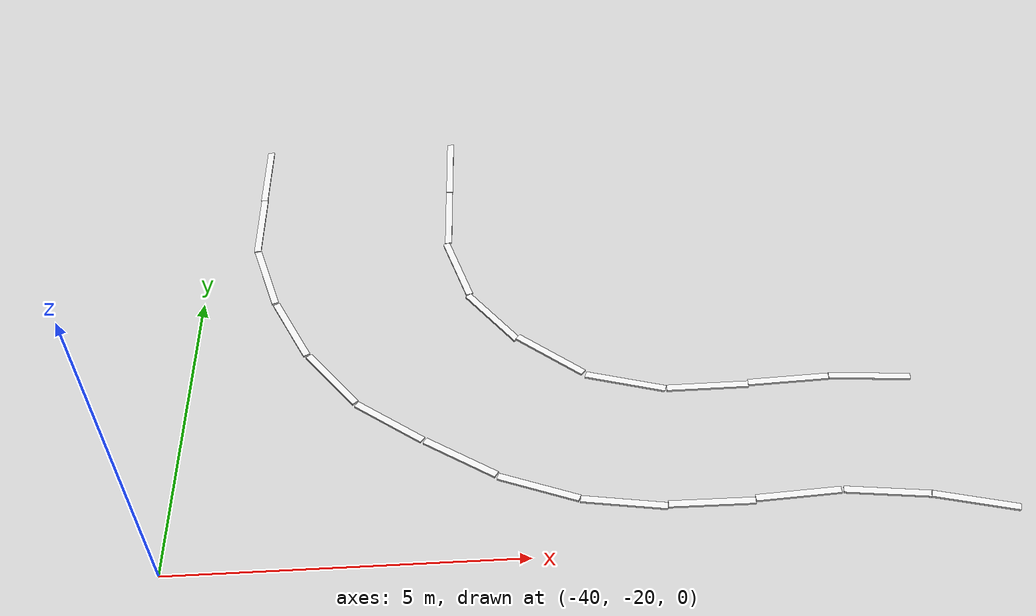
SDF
<sdf version="1.7">
 <world name="default">
  <model name="ground_plane">
   <static>1</static>
   <link name="link">
    <collision name="collision">
     <geometry><plane><normal>0 0 1</normal><size>100 100</size></plane></geometry>
     <surface><friction><ode><mu>100</mu><mu2>50</mu2></ode></friction></surface>
    </collision>
    <visual name="visual">
     <cast_shadows>0</cast_shadows>
     <geometry><plane><normal>0 0 1</normal><size>100 100</size></plane></geometry>
     <material>
      <script><uri>file://media/materials/scripts/gazebo.material</uri><name>Gazebo/Grey</name></script>
     </material>
    </visual>
   </link>
  </model>
  <model name="road_way_0">
   <link name="link">
    <inertial>
     <mass>1</mass>
     <inertia>
      <ixx>0.166667</ixx>
      <ixy>0</ixy>
      <ixz>0</ixz>
      <iyy>0.166667</iyy>
      <iyz>0</iyz>
      <izz>0.166667</izz>
     </inertia>
    </inertial>
    <visual name="visual">
     <geometry><box><size>0.106644 1.22348 0.03129</size></box></geometry>
     <material>
      <script><name>Gazebo/White</name><uri>file://media/materials/scripts/gazebo.material</uri></script>
      <shader type="pixel"><normal_map>__default__</normal_map></shader>
      <ambient>1 1 1 1</ambient>
      <diffuse>1 1 1 1</diffuse>
      <specular>0 0 0 1</specular>
      <emissive>0 0 0 1</emissive>
     </material>
    </visual>
    <collision name="collision">
     <geometry><box><size>0.10644 1.22348 0.03129</size></box></geometry>
     <surface>
      <friction>
       <ode><mu>1</mu><mu2>1</mu2><fdir1>0 0 0</fdir1><slip1>0</slip1><slip2>0</slip2></ode>
       <torsional>
        <coefficient>1</coefficient>
        <patch_radius>0</patch_radius>
        <surface_radius>0</surface_radius>
        <use_patch_radius>1</use_patch_radius>
        <ode><slip>0</slip></ode>
       </torsional>
      </friction>
      <bounce><restitution_coefficient>0</restitution_coefficient><threshold>1e+06</threshold></bounce>
      <contact>
       <collide_without_contact>0</collide_without_contact>
       <collide_without_contact_bitmask>1</collide_without_contact_bitmask>
       <collide_bitmask>1</collide_bitmask>
       <ode>
        <soft_cfm>0</soft_cfm>
        <soft_erp>0.2</soft_erp>
        <kp>1e+13</kp>
        <kd>1</kd>
        <max_vel>0.01</max_vel>
        <min_depth>0</min_depth>
       </ode>
       <bullet>
        <split_impulse>1</split_impulse>
        <split_impulse_penetration_threshold>-0.01</split_impulse_penetration_threshold>
        <soft_cfm>0</soft_cfm>
        <soft_erp>0.2</soft_erp>
        <kp>1e+13</kp>
        <kd>1</kd>
       </bullet>
      </contact>
     </surface>
    </collision>
   </link>
   <static>0</static>
   <pose>-39.2794 -12.0301 0.015638 1.1e-05 -0 -0.005652</pose>
  </model>
  <model name="road_way_0_clone">
   <link name="link">
    <inertial>
     <mass>1</mass>
     <inertia>
      <ixx>0.166667</ixx>
      <ixy>0</ixy>
      <ixz>0</ixz>
      <iyy>0.166667</iyy>
      <iyz>0</iyz>
      <izz>0.166667</izz>
     </inertia>
    </inertial>
    <visual name="visual">
     <geometry><box><size>0.106644 1.22348 0.03129</size></box></geometry>
     <material>
      <script><name>Gazebo/White</name><uri>file://media/materials/scripts/gazebo.material</uri></script>
      <shader type="pixel"><normal_map>__default__</normal_map></shader>
      <ambient>1 1 1 1</ambient>
      <diffuse>1 1 1 1</diffuse>
      <specular>0 0 0 1</specular>
      <emissive>0 0 0 1</emissive>
     </material>
    </visual>
    <collision name="collision">
     <geometry><box><size>0.10644 1.22348 0.03129</size></box></geometry>
     <surface>
      <friction>
       <ode><mu>1</mu><mu2>1</mu2><fdir1>0 0 0</fdir1><slip1>0</slip1><slip2>0</slip2></ode>
       <torsional>
        <coefficient>1</coefficient>
        <patch_radius>0</patch_radius>
        <surface_radius>0</surface_radius>
        <use_patch_radius>1</use_patch_radius>
        <ode><slip>0</slip></ode>
       </torsional>
      </friction>
      <bounce><restitution_coefficient>0</restitution_coefficient><threshold>1e+06</threshold></bounce>
      <contact>
       <collide_without_contact>0</collide_without_contact>
       <collide_without_contact_bitmask>1</collide_without_contact_bitmask>
       <collide_bitmask>1</collide_bitmask>
       <ode>
        <soft_cfm>0</soft_cfm>
        <soft_erp>0.2</soft_erp>
        <kp>1e+13</kp>
        <kd>1</kd>
        <max_vel>0.01</max_vel>
        <min_depth>0</min_depth>
       </ode>
       <bullet>
        <split_impulse>1</split_impulse>
        <split_impulse_penetration_threshold>-0.01</split_impulse_penetration_threshold>
        <soft_cfm>0</soft_cfm>
        <soft_erp>0.2</soft_erp>
        <kp>1e+13</kp>
        <kd>1</kd>
       </bullet>
      </contact>
     </surface>
    </collision>
   </link>
   <static>0</static>
   <pose>-36.1652 -11.9953 0.015638 1.1e-05 -0 -0.006089</pose>
  </model>
  <model name="road_way_0_clone_0">
   <link name="link">
    <inertial>
     <mass>1</mass>
     <inertia>
      <ixx>0.166667</ixx>
      <ixy>0</ixy>
      <ixz>0</ixz>
      <iyy>0.166667</iyy>
      <iyz>0</iyz>
      <izz>0.166667</izz>
     </inertia>
    </inertial>
    <visual name="visual">
     <geometry><box><size>0.106644 1.22348 0.03129</size></box></geometry>
     <material>
      <script><name>Gazebo/White</name><uri>file://media/materials/scripts/gazebo.material</uri></script>
      <shader type="pixel"><normal_map>__default__</normal_map></shader>
      <ambient>1 1 1 1</ambient>
      <diffuse>1 1 1 1</diffuse>
      <specular>0 0 0 1</specular>
      <emissive>0 0 0 1</emissive>
     </material>
    </visual>
    <collision name="collision">
     <geometry><box><size>0.10644 1.22348 0.03129</size></box></geometry>
     <surface>
      <friction>
       <ode><mu>1</mu><mu2>1</mu2><fdir1>0 0 0</fdir1><slip1>0</slip1><slip2>0</slip2></ode>
       <torsional>
        <coefficient>1</coefficient>
        <patch_radius>0</patch_radius>
        <surface_radius>0</surface_radius>
        <use_patch_radius>1</use_patch_radius>
        <ode><slip>0</slip></ode>
       </torsional>
      </friction>
      <bounce><restitution_coefficient>0</restitution_coefficient><threshold>1e+06</threshold></bounce>
      <contact>
       <collide_without_contact>0</collide_without_contact>
       <collide_without_contact_bitmask>1</collide_without_contact_bitmask>
       <collide_bitmask>1</collide_bitmask>
       <ode>
        <soft_cfm>0</soft_cfm>
        <soft_erp>0.2</soft_erp>
        <kp>1e+13</kp>
        <kd>1</kd>
        <max_vel>0.01</max_vel>
        <min_depth>0</min_depth>
       </ode>
       <bullet>
        <split_impulse>1</split_impulse>
        <split_impulse_penetration_threshold>-0.01</split_impulse_penetration_threshold>
        <soft_cfm>0</soft_cfm>
        <soft_erp>0.2</soft_erp>
        <kp>1e+13</kp>
        <kd>1</kd>
       </bullet>
      </contact>
     </surface>
    </collision>
   </link>
   <static>0</static>
   <pose>-39.278 -13.2565 0.015638 -1.1e-05 -0 -0.005746</pose>
  </model>
  <model name="road_way_0_clone_clone">
   <link name="link">
    <inertial>
     <mass>1</mass>
     <inertia>
      <ixx>0.166667</ixx>
      <ixy>0</ixy>
      <ixz>0</ixz>
      <iyy>0.166667</iyy>
      <iyz>0</iyz>
      <izz>0.166667</izz>
     </inertia>
    </inertial>
    <visual name="visual">
     <geometry><box><size>0.106644 1.22348 0.03129</size></box></geometry>
     <material>
      <script><name>Gazebo/White</name><uri>file://media/materials/scripts/gazebo.material</uri></script>
      <shader type="pixel"><normal_map>__default__</normal_map></shader>
      <ambient>1 1 1 1</ambient>
      <diffuse>1 1 1 1</diffuse>
      <specular>0 0 0 1</specular>
      <emissive>0 0 0 1</emissive>
     </material>
    </visual>
    <collision name="collision">
     <geometry><box><size>0.10644 1.22348 0.03129</size></box></geometry>
     <surface>
      <friction>
       <ode><mu>1</mu><mu2>1</mu2><fdir1>0 0 0</fdir1><slip1>0</slip1><slip2>0</slip2></ode>
       <torsional>
        <coefficient>1</coefficient>
        <patch_radius>0</patch_radius>
        <surface_radius>0</surface_radius>
        <use_patch_radius>1</use_patch_radius>
        <ode><slip>0</slip></ode>
       </torsional>
      </friction>
      <bounce><restitution_coefficient>0</restitution_coefficient><threshold>1e+06</threshold></bounce>
      <contact>
       <collide_without_contact>0</collide_without_contact>
       <collide_without_contact_bitmask>1</collide_without_contact_bitmask>
       <collide_bitmask>1</collide_bitmask>
       <ode>
        <soft_cfm>0</soft_cfm>
        <soft_erp>0.2</soft_erp>
        <kp>1e+13</kp>
        <kd>1</kd>
        <max_vel>0.01</max_vel>
        <min_depth>0</min_depth>
       </ode>
       <bullet>
        <split_impulse>1</split_impulse>
        <split_impulse_penetration_threshold>-0.01</split_impulse_penetration_threshold>
        <soft_cfm>0</soft_cfm>
        <soft_erp>0.2</soft_erp>
        <kp>1e+13</kp>
        <kd>1</kd>
       </bullet>
      </contact>
     </surface>
    </collision>
   </link>
   <static>0</static>
   <pose>-36.1754 -13.2348 0.015638 -1.1e-05 0 -0.005688</pose>
  </model>
  <model name="road_way_0_clone_0_clone">
   <link name="link">
    <inertial>
     <mass>1</mass>
     <inertia>
      <ixx>0.166667</ixx>
      <ixy>0</ixy>
      <ixz>0</ixz>
      <iyy>0.166667</iyy>
      <iyz>0</iyz>
      <izz>0.166667</izz>
     </inertia>
    </inertial>
    <visual name="visual">
     <geometry><box><size>0.106644 1.22348 0.03129</size></box></geometry>
     <material>
      <script><name>Gazebo/White</name><uri>file://media/materials/scripts/gazebo.material</uri></script>
      <shader type="pixel"><normal_map>__default__</normal_map></shader>
      <ambient>1 1 1 1</ambient>
      <diffuse>1 1 1 1</diffuse>
      <specular>0 0 0 1</specular>
      <emissive>0 0 0 1</emissive>
     </material>
    </visual>
    <collision name="collision">
     <geometry><box><size>0.10644 1.22348 0.03129</size></box></geometry>
     <surface>
      <friction>
       <ode><mu>1</mu><mu2>1</mu2><fdir1>0 0 0</fdir1><slip1>0</slip1><slip2>0</slip2></ode>
       <torsional>
        <coefficient>1</coefficient>
        <patch_radius>0</patch_radius>
        <surface_radius>0</surface_radius>
        <use_patch_radius>1</use_patch_radius>
        <ode><slip>0</slip></ode>
       </torsional>
      </friction>
      <bounce><restitution_coefficient>0</restitution_coefficient><threshold>1e+06</threshold></bounce>
      <contact>
       <collide_without_contact>0</collide_without_contact>
       <collide_without_contact_bitmask>1</collide_without_contact_bitmask>
       <collide_bitmask>1</collide_bitmask>
       <ode>
        <soft_cfm>0</soft_cfm>
        <soft_erp>0.2</soft_erp>
        <kp>1e+13</kp>
        <kd>1</kd>
        <max_vel>0.01</max_vel>
        <min_depth>0</min_depth>
       </ode>
       <bullet>
        <split_impulse>1</split_impulse>
        <split_impulse_penetration_threshold>-0.01</split_impulse_penetration_threshold>
        <soft_cfm>0</soft_cfm>
        <soft_erp>0.2</soft_erp>
        <kp>1e+13</kp>
        <kd>1</kd>
       </bullet>
      </contact>
     </surface>
    </collision>
   </link>
   <static>0</static>
   <pose>-39.0775 -14.4675 0.015638 1.1e-05 0 0.313092</pose>
  </model>
  <model name="road_way_0_clone_0_clone_clone">
   <link name="link">
    <inertial>
     <mass>1</mass>
     <inertia>
      <ixx>0.166667</ixx>
      <ixy>0</ixy>
      <ixz>0</ixz>
      <iyy>0.166667</iyy>
      <iyz>0</iyz>
      <izz>0.166667</izz>
     </inertia>
    </inertial>
    <visual name="visual">
     <geometry><box><size>0.106644 1.22348 0.03129</size></box></geometry>
     <material>
      <script><name>Gazebo/White</name><uri>file://media/materials/scripts/gazebo.material</uri></script>
      <shader type="pixel"><normal_map>__default__</normal_map></shader>
      <ambient>1 1 1 1</ambient>
      <diffuse>1 1 1 1</diffuse>
      <specular>0 0 0 1</specular>
      <emissive>0 0 0 1</emissive>
     </material>
    </visual>
    <collision name="collision">
     <geometry><box><size>0.10644 1.22348 0.03129</size></box></geometry>
     <surface>
      <friction>
       <ode><mu>1</mu><mu2>1</mu2><fdir1>0 0 0</fdir1><slip1>0</slip1><slip2>0</slip2></ode>
       <torsional>
        <coefficient>1</coefficient>
        <patch_radius>0</patch_radius>
        <surface_radius>0</surface_radius>
        <use_patch_radius>1</use_patch_radius>
        <ode><slip>0</slip></ode>
       </torsional>
      </friction>
      <bounce><restitution_coefficient>0</restitution_coefficient><threshold>1e+06</threshold></bounce>
      <contact>
       <collide_without_contact>0</collide_without_contact>
       <collide_without_contact_bitmask>1</collide_without_contact_bitmask>
       <collide_bitmask>1</collide_bitmask>
       <ode>
        <soft_cfm>0</soft_cfm>
        <soft_erp>0.2</soft_erp>
        <kp>1e+13</kp>
        <kd>1</kd>
        <max_vel>0.01</max_vel>
        <min_depth>0</min_depth>
       </ode>
       <bullet>
        <split_impulse>1</split_impulse>
        <split_impulse_penetration_threshold>-0.01</split_impulse_penetration_threshold>
        <soft_cfm>0</soft_cfm>
        <soft_erp>0.2</soft_erp>
        <kp>1e+13</kp>
        <kd>1</kd>
       </bullet>
      </contact>
     </surface>
    </collision>
   </link>
   <static>0</static>
   <pose>-36.0223 -14.4452 0.015168 -0.000221 -9e-06 0.311167</pose>
  </model>
  <model name="road_way_0_clone_0_clone_clone_0">
   <link name="link">
    <inertial>
     <mass>1</mass>
     <inertia>
      <ixx>0.166667</ixx>
      <ixy>0</ixy>
      <ixz>0</ixz>
      <iyy>0.166667</iyy>
      <iyz>0</iyz>
      <izz>0.166667</izz>
     </inertia>
    </inertial>
    <visual name="visual">
     <geometry><box><size>0.106644 1.22348 0.03129</size></box></geometry>
     <material>
      <script><name>Gazebo/White</name><uri>file://media/materials/scripts/gazebo.material</uri></script>
      <shader type="pixel"><normal_map>__default__</normal_map></shader>
      <ambient>1 1 1 1</ambient>
      <diffuse>1 1 1 1</diffuse>
      <specular>0 0 0 1</specular>
      <emissive>0 0 0 1</emissive>
     </material>
    </visual>
    <collision name="collision">
     <geometry><box><size>0.10644 1.22348 0.03129</size></box></geometry>
     <surface>
      <friction>
       <ode><mu>1</mu><mu2>1</mu2><fdir1>0 0 0</fdir1><slip1>0</slip1><slip2>0</slip2></ode>
       <torsional>
        <coefficient>1</coefficient>
        <patch_radius>0</patch_radius>
        <surface_radius>0</surface_radius>
        <use_patch_radius>1</use_patch_radius>
        <ode><slip>0</slip></ode>
       </torsional>
      </friction>
      <bounce><restitution_coefficient>0</restitution_coefficient><threshold>1e+06</threshold></bounce>
      <contact>
       <collide_without_contact>0</collide_without_contact>
       <collide_without_contact_bitmask>1</collide_without_contact_bitmask>
       <collide_bitmask>1</collide_bitmask>
       <ode>
        <soft_cfm>0</soft_cfm>
        <soft_erp>0.2</soft_erp>
        <kp>1e+13</kp>
        <kd>1</kd>
        <max_vel>0.01</max_vel>
        <min_depth>0</min_depth>
       </ode>
       <bullet>
        <split_impulse>1</split_impulse>
        <split_impulse_penetration_threshold>-0.01</split_impulse_penetration_threshold>
        <soft_cfm>0</soft_cfm>
        <soft_erp>0.2</soft_erp>
        <kp>1e+13</kp>
        <kd>1</kd>
       </bullet>
      </contact>
     </surface>
    </collision>
   </link>
   <static>0</static>
   <pose>-38.5918 -15.6233 0.015638 1.1e-05 -0 0.469493</pose>
  </model>
  <model name="road_way_0_clone_0_clone_clone_0_clone">
   <link name="link">
    <inertial>
     <mass>1</mass>
     <inertia>
      <ixx>0.166667</ixx>
      <ixy>0</ixy>
      <ixz>0</ixz>
      <iyy>0.166667</iyy>
      <iyz>0</iyz>
      <izz>0.166667</izz>
     </inertia>
    </inertial>
    <visual name="visual">
     <geometry><box><size>0.106644 1.22348 0.03129</size></box></geometry>
     <material>
      <script><name>Gazebo/White</name><uri>file://media/materials/scripts/gazebo.material</uri></script>
      <shader type="pixel"><normal_map>__default__</normal_map></shader>
      <ambient>1 1 1 1</ambient>
      <diffuse>1 1 1 1</diffuse>
      <specular>0 0 0 1</specular>
      <emissive>0 0 0 1</emissive>
     </material>
    </visual>
    <collision name="collision">
     <geometry><box><size>0.10644 1.22348 0.03129</size></box></geometry>
     <surface>
      <friction>
       <ode><mu>1</mu><mu2>1</mu2><fdir1>0 0 0</fdir1><slip1>0</slip1><slip2>0</slip2></ode>
       <torsional>
        <coefficient>1</coefficient>
        <patch_radius>0</patch_radius>
        <surface_radius>0</surface_radius>
        <use_patch_radius>1</use_patch_radius>
        <ode><slip>0</slip></ode>
       </torsional>
      </friction>
      <bounce><restitution_coefficient>0</restitution_coefficient><threshold>1e+06</threshold></bounce>
      <contact>
       <collide_without_contact>0</collide_without_contact>
       <collide_without_contact_bitmask>1</collide_without_contact_bitmask>
       <collide_bitmask>1</collide_bitmask>
       <ode>
        <soft_cfm>0</soft_cfm>
        <soft_erp>0.2</soft_erp>
        <kp>1e+13</kp>
        <kd>1</kd>
        <max_vel>0.01</max_vel>
        <min_depth>0</min_depth>
       </ode>
       <bullet>
        <split_impulse>1</split_impulse>
        <split_impulse_penetration_threshold>-0.01</split_impulse_penetration_threshold>
        <soft_cfm>0</soft_cfm>
        <soft_erp>0.2</soft_erp>
        <kp>1e+13</kp>
        <kd>1</kd>
       </bullet>
      </contact>
     </surface>
    </collision>
   </link>
   <static>0</static>
   <pose>-35.4829 -15.5384 0.015645 0 -0 0.653579</pose>
  </model>
  <model name="road_way_0_clone_0_clone_clone_0_clone_clone">
   <link name="link">
    <inertial>
     <mass>1</mass>
     <inertia>
      <ixx>0.166667</ixx>
      <ixy>0</ixy>
      <ixz>0</ixz>
      <iyy>0.166667</iyy>
      <iyz>0</iyz>
      <izz>0.166667</izz>
     </inertia>
    </inertial>
    <visual name="visual">
     <geometry><box><size>0.106644 1.22348 0.03129</size></box></geometry>
     <material>
      <script><name>Gazebo/White</name><uri>file://media/materials/scripts/gazebo.material</uri></script>
      <shader type="pixel"><normal_map>__default__</normal_map></shader>
      <ambient>1 1 1 1</ambient>
      <diffuse>1 1 1 1</diffuse>
      <specular>0 0 0 1</specular>
      <emissive>0 0 0 1</emissive>
     </material>
    </visual>
    <collision name="collision">
     <geometry><box><size>0.10644 1.22348 0.03129</size></box></geometry>
     <surface>
      <friction>
       <ode><mu>1</mu><mu2>1</mu2><fdir1>0 0 0</fdir1><slip1>0</slip1><slip2>0</slip2></ode>
       <torsional>
        <coefficient>1</coefficient>
        <patch_radius>0</patch_radius>
        <surface_radius>0</surface_radius>
        <use_patch_radius>1</use_patch_radius>
        <ode><slip>0</slip></ode>
       </torsional>
      </friction>
      <bounce><restitution_coefficient>0</restitution_coefficient><threshold>1e+06</threshold></bounce>
      <contact>
       <collide_without_contact>0</collide_without_contact>
       <collide_without_contact_bitmask>1</collide_without_contact_bitmask>
       <collide_bitmask>1</collide_bitmask>
       <ode>
        <soft_cfm>0</soft_cfm>
        <soft_erp>0.2</soft_erp>
        <kp>1e+13</kp>
        <kd>1</kd>
        <max_vel>0.01</max_vel>
        <min_depth>0</min_depth>
       </ode>
       <bullet>
        <split_impulse>1</split_impulse>
        <split_impulse_penetration_threshold>-0.01</split_impulse_penetration_threshold>
        <soft_cfm>0</soft_cfm>
        <soft_erp>0.2</soft_erp>
        <kp>1e+13</kp>
        <kd>1</kd>
       </bullet>
      </contact>
     </surface>
    </collision>
   </link>
   <static>0</static>
   <pose>-37.9056 -16.6711 0.015638 1.1e-05 -0 0.666458</pose>
  </model>
  <model name="road_way_0_clone_0_clone_clone_0_clone_clone_clone">
   <link name="link">
    <inertial>
     <mass>1</mass>
     <inertia>
      <ixx>0.166667</ixx>
      <ixy>0</ixy>
      <ixz>0</ixz>
      <iyy>0.166667</iyy>
      <iyz>0</iyz>
      <izz>0.166667</izz>
     </inertia>
    </inertial>
    <visual name="visual">
     <geometry><box><size>0.106644 1.22348 0.03129</size></box></geometry>
     <material>
      <script><name>Gazebo/White</name><uri>file://media/materials/scripts/gazebo.material</uri></script>
      <shader type="pixel"><normal_map>__default__</normal_map></shader>
      <ambient>1 1 1 1</ambient>
      <diffuse>1 1 1 1</diffuse>
      <specular>0 0 0 1</specular>
      <emissive>0 0 0 1</emissive>
     </material>
    </visual>
    <collision name="collision">
     <geometry><box><size>0.10644 1.22348 0.03129</size></box></geometry>
     <surface>
      <friction>
       <ode><mu>1</mu><mu2>1</mu2><fdir1>0 0 0</fdir1><slip1>0</slip1><slip2>0</slip2></ode>
       <torsional>
        <coefficient>1</coefficient>
        <patch_radius>0</patch_radius>
        <surface_radius>0</surface_radius>
        <use_patch_radius>1</use_patch_radius>
        <ode><slip>0</slip></ode>
       </torsional>
      </friction>
      <bounce><restitution_coefficient>0</restitution_coefficient><threshold>1e+06</threshold></bounce>
      <contact>
       <collide_without_contact>0</collide_without_contact>
       <collide_without_contact_bitmask>1</collide_without_contact_bitmask>
       <collide_bitmask>1</collide_bitmask>
       <ode>
        <soft_cfm>0</soft_cfm>
        <soft_erp>0.2</soft_erp>
        <kp>1e+13</kp>
        <kd>1</kd>
        <max_vel>0.01</max_vel>
        <min_depth>0</min_depth>
       </ode>
       <bullet>
        <split_impulse>1</split_impulse>
        <split_impulse_penetration_threshold>-0.01</split_impulse_penetration_threshold>
        <soft_cfm>0</soft_cfm>
        <soft_erp>0.2</soft_erp>
        <kp>1e+13</kp>
        <kd>1</kd>
       </bullet>
      </contact>
     </surface>
    </collision>
   </link>
   <static>0</static>
   <pose>-37.0132 -17.5434 0.015638 -1.1e-05 -0 0.939055</pose>
  </model>
  <model name="road_way_0_clone_0_clone_clone_0_clone_clone_0">
   <link name="link">
    <inertial>
     <mass>1</mass>
     <inertia>
      <ixx>0.166667</ixx>
      <ixy>0</ixy>
      <ixz>0</ixz>
      <iyy>0.166667</iyy>
      <iyz>0</iyz>
      <izz>0.166667</izz>
     </inertia>
    </inertial>
    <visual name="visual">
     <geometry><box><size>0.106644 1.22348 0.03129</size></box></geometry>
     <material>
      <script><name>Gazebo/White</name><uri>file://media/materials/scripts/gazebo.material</uri></script>
      <shader type="pixel"><normal_map>__default__</normal_map></shader>
      <ambient>1 1 1 1</ambient>
      <diffuse>1 1 1 1</diffuse>
      <specular>0 0 0 1</specular>
      <emissive>0 0 0 1</emissive>
     </material>
    </visual>
    <collision name="collision">
     <geometry><box><size>0.10644 1.22348 0.03129</size></box></geometry>
     <surface>
      <friction>
       <ode><mu>1</mu><mu2>1</mu2><fdir1>0 0 0</fdir1><slip1>0</slip1><slip2>0</slip2></ode>
       <torsional>
        <coefficient>1</coefficient>
        <patch_radius>0</patch_radius>
        <surface_radius>0</surface_radius>
        <use_patch_radius>1</use_patch_radius>
        <ode><slip>0</slip></ode>
       </torsional>
      </friction>
      <bounce><restitution_coefficient>0</restitution_coefficient><threshold>1e+06</threshold></bounce>
      <contact>
       <collide_without_contact>0</collide_without_contact>
       <collide_without_contact_bitmask>1</collide_without_contact_bitmask>
       <collide_bitmask>1</collide_bitmask>
       <ode>
        <soft_cfm>0</soft_cfm>
        <soft_erp>0.2</soft_erp>
        <kp>1e+13</kp>
        <kd>1</kd>
        <max_vel>0.01</max_vel>
        <min_depth>0</min_depth>
       </ode>
       <bullet>
        <split_impulse>1</split_impulse>
        <split_impulse_penetration_threshold>-0.01</split_impulse_penetration_threshold>
        <soft_cfm>0</soft_cfm>
        <soft_erp>0.2</soft_erp>
        <kp>1e+13</kp>
        <kd>1</kd>
       </bullet>
      </contact>
     </surface>
    </collision>
   </link>
   <static>0</static>
   <pose>-34.6108 -16.3797 0.031443 0.02584 -2e-06 0.911944</pose>
  </model>
  <model name="road_way_0_clone_0_clone_clone_0_clone_clone_clone_clone">
   <link name="link">
    <inertial>
     <mass>1</mass>
     <inertia>
      <ixx>0.166667</ixx>
      <ixy>0</ixy>
      <ixz>0</ixz>
      <iyy>0.166667</iyy>
      <iyz>0</iyz>
      <izz>0.166667</izz>
     </inertia>
    </inertial>
    <visual name="visual">
     <geometry><box><size>0.106644 1.22348 0.03129</size></box></geometry>
     <material>
      <script><name>Gazebo/White</name><uri>file://media/materials/scripts/gazebo.material</uri></script>
      <shader type="pixel"><normal_map>__default__</normal_map></shader>
      <ambient>1 1 1 1</ambient>
      <diffuse>1 1 1 1</diffuse>
      <specular>0 0 0 1</specular>
      <emissive>0 0 0 1</emissive>
     </material>
    </visual>
    <collision name="collision">
     <geometry><box><size>0.10644 1.22348 0.03129</size></box></geometry>
     <surface>
      <friction>
       <ode><mu>1</mu><mu2>1</mu2><fdir1>0 0 0</fdir1><slip1>0</slip1><slip2>0</slip2></ode>
       <torsional>
        <coefficient>1</coefficient>
        <patch_radius>0</patch_radius>
        <surface_radius>0</surface_radius>
        <use_patch_radius>1</use_patch_radius>
        <ode><slip>0</slip></ode>
       </torsional>
      </friction>
      <bounce><restitution_coefficient>0</restitution_coefficient><threshold>1e+06</threshold></bounce>
      <contact>
       <collide_without_contact>0</collide_without_contact>
       <collide_without_contact_bitmask>1</collide_without_contact_bitmask>
       <collide_bitmask>1</collide_bitmask>
       <ode>
        <soft_cfm>0</soft_cfm>
        <soft_erp>0.2</soft_erp>
        <kp>1e+13</kp>
        <kd>1</kd>
        <max_vel>0.01</max_vel>
        <min_depth>0</min_depth>
       </ode>
       <bullet>
        <split_impulse>1</split_impulse>
        <split_impulse_penetration_threshold>-0.01</split_impulse_penetration_threshold>
        <soft_cfm>0</soft_cfm>
        <soft_erp>0.2</soft_erp>
        <kp>1e+13</kp>
        <kd>1</kd>
       </bullet>
      </contact>
     </surface>
    </collision>
   </link>
   <static>0</static>
   <pose>-35.9751 -18.2531 0.015638 -1.1e-05 -0 0.995994</pose>
  </model>
  <model name="road_way_0_clone_0_clone_clone_0_clone_clone_clone_clone_clone">
   <link name="link">
    <inertial>
     <mass>1</mass>
     <inertia>
      <ixx>0.166667</ixx>
      <ixy>0</ixy>
      <ixz>0</ixz>
      <iyy>0.166667</iyy>
      <iyz>0</iyz>
      <izz>0.166667</izz>
     </inertia>
    </inertial>
    <visual name="visual">
     <geometry><box><size>0.106644 1.22348 0.03129</size></box></geometry>
     <material>
      <script><name>Gazebo/White</name><uri>file://media/materials/scripts/gazebo.material</uri></script>
      <shader type="pixel"><normal_map>__default__</normal_map></shader>
      <ambient>1 1 1 1</ambient>
      <diffuse>1 1 1 1</diffuse>
      <specular>0 0 0 1</specular>
      <emissive>0 0 0 1</emissive>
     </material>
    </visual>
    <collision name="collision">
     <geometry><box><size>0.10644 1.22348 0.03129</size></box></geometry>
     <surface>
      <friction>
       <ode><mu>1</mu><mu2>1</mu2><fdir1>0 0 0</fdir1><slip1>0</slip1><slip2>0</slip2></ode>
       <torsional>
        <coefficient>1</coefficient>
        <patch_radius>0</patch_radius>
        <surface_radius>0</surface_radius>
        <use_patch_radius>1</use_patch_radius>
        <ode><slip>0</slip></ode>
       </torsional>
      </friction>
      <bounce><restitution_coefficient>0</restitution_coefficient><threshold>1e+06</threshold></bounce>
      <contact>
       <collide_without_contact>0</collide_without_contact>
       <collide_without_contact_bitmask>1</collide_without_contact_bitmask>
       <collide_bitmask>1</collide_bitmask>
       <ode>
        <soft_cfm>0</soft_cfm>
        <soft_erp>0.2</soft_erp>
        <kp>1e+13</kp>
        <kd>1</kd>
        <max_vel>0.01</max_vel>
        <min_depth>0</min_depth>
       </ode>
       <bullet>
        <split_impulse>1</split_impulse>
        <split_impulse_penetration_threshold>-0.01</split_impulse_penetration_threshold>
        <soft_cfm>0</soft_cfm>
        <soft_erp>0.2</soft_erp>
        <kp>1e+13</kp>
        <kd>1</kd>
       </bullet>
      </contact>
     </surface>
    </collision>
   </link>
   <static>0</static>
   <pose>-34.8755 -18.8395 0.015638 1.1e-05 -0 1.19857</pose>
  </model>
  <model name="road_way_0_clone_0_clone_clone_0_clone_clone_clone_clone_clone_clone">
   <link name="link">
    <inertial>
     <mass>1</mass>
     <inertia>
      <ixx>0.166667</ixx>
      <ixy>0</ixy>
      <ixz>0</ixz>
      <iyy>0.166667</iyy>
      <iyz>0</iyz>
      <izz>0.166667</izz>
     </inertia>
    </inertial>
    <visual name="visual">
     <geometry><box><size>0.106644 1.22348 0.03129</size></box></geometry>
     <material>
      <script><name>Gazebo/White</name><uri>file://media/materials/scripts/gazebo.material</uri></script>
      <shader type="pixel"><normal_map>__default__</normal_map></shader>
      <ambient>1 1 1 1</ambient>
      <diffuse>1 1 1 1</diffuse>
      <specular>0 0 0 1</specular>
      <emissive>0 0 0 1</emissive>
     </material>
    </visual>
    <collision name="collision">
     <geometry><box><size>0.10644 1.22348 0.03129</size></box></geometry>
     <surface>
      <friction>
       <ode><mu>1</mu><mu2>1</mu2><fdir1>0 0 0</fdir1><slip1>0</slip1><slip2>0</slip2></ode>
       <torsional>
        <coefficient>1</coefficient>
        <patch_radius>0</patch_radius>
        <surface_radius>0</surface_radius>
        <use_patch_radius>1</use_patch_radius>
        <ode><slip>0</slip></ode>
       </torsional>
      </friction>
      <bounce><restitution_coefficient>0</restitution_coefficient><threshold>1e+06</threshold></bounce>
      <contact>
       <collide_without_contact>0</collide_without_contact>
       <collide_without_contact_bitmask>1</collide_without_contact_bitmask>
       <collide_bitmask>1</collide_bitmask>
       <ode>
        <soft_cfm>0</soft_cfm>
        <soft_erp>0.2</soft_erp>
        <kp>1e+13</kp>
        <kd>1</kd>
        <max_vel>0.01</max_vel>
        <min_depth>0</min_depth>
       </ode>
       <bullet>
        <split_impulse>1</split_impulse>
        <split_impulse_penetration_threshold>-0.01</split_impulse_penetration_threshold>
        <soft_cfm>0</soft_cfm>
        <soft_erp>0.2</soft_erp>
        <kp>1e+13</kp>
        <kd>1</kd>
       </bullet>
      </contact>
     </surface>
    </collision>
   </link>
   <static>0</static>
   <pose>-33.5093 -16.9683 0.015638 -1.1e-05 -0 1.28937</pose>
  </model>
  <model name="road_way_0_clone_0_clone_clone_0_clone_clone_clone_clone_clone_clone_clone">
   <link name="link">
    <inertial>
     <mass>1</mass>
     <inertia>
      <ixx>0.166667</ixx>
      <ixy>0</ixy>
      <ixz>0</ixz>
      <iyy>0.166667</iyy>
      <iyz>0</iyz>
      <izz>0.166667</izz>
     </inertia>
    </inertial>
    <visual name="visual">
     <geometry><box><size>0.106644 1.22348 0.03129</size></box></geometry>
     <material>
      <script><name>Gazebo/White</name><uri>file://media/materials/scripts/gazebo.material</uri></script>
      <shader type="pixel"><normal_map>__default__</normal_map></shader>
      <ambient>1 1 1 1</ambient>
      <diffuse>1 1 1 1</diffuse>
      <specular>0 0 0 1</specular>
      <emissive>0 0 0 1</emissive>
     </material>
    </visual>
    <collision name="collision">
     <geometry><box><size>0.10644 1.22348 0.03129</size></box></geometry>
     <surface>
      <friction>
       <ode><mu>1</mu><mu2>1</mu2><fdir1>0 0 0</fdir1><slip1>0</slip1><slip2>0</slip2></ode>
       <torsional>
        <coefficient>1</coefficient>
        <patch_radius>0</patch_radius>
        <surface_radius>0</surface_radius>
        <use_patch_radius>1</use_patch_radius>
        <ode><slip>0</slip></ode>
       </torsional>
      </friction>
      <bounce><restitution_coefficient>0</restitution_coefficient><threshold>1e+06</threshold></bounce>
      <contact>
       <collide_without_contact>0</collide_without_contact>
       <collide_without_contact_bitmask>1</collide_without_contact_bitmask>
       <collide_bitmask>1</collide_bitmask>
       <ode>
        <soft_cfm>0</soft_cfm>
        <soft_erp>0.2</soft_erp>
        <kp>1e+13</kp>
        <kd>1</kd>
        <max_vel>0.01</max_vel>
        <min_depth>0</min_depth>
       </ode>
       <bullet>
        <split_impulse>1</split_impulse>
        <split_impulse_penetration_threshold>-0.01</split_impulse_penetration_threshold>
        <soft_cfm>0</soft_cfm>
        <soft_erp>0.2</soft_erp>
        <kp>1e+13</kp>
        <kd>1</kd>
       </bullet>
      </contact>
     </surface>
    </collision>
   </link>
   <static>0</static>
   <pose>-32.2927 -17.1264 0.015638 -1.1e-05 -0 1.58012</pose>
  </model>
  <model name="road_way_0_clone_0_clone_clone_0_clone_clone_clone_clone_clone_clone_clone_clone">
   <link name="link">
    <inertial>
     <mass>1</mass>
     <inertia>
      <ixx>0.166667</ixx>
      <ixy>0</ixy>
      <ixz>0</ixz>
      <iyy>0.166667</iyy>
      <iyz>0</iyz>
      <izz>0.166667</izz>
     </inertia>
    </inertial>
    <visual name="visual">
     <geometry><box><size>0.106644 1.22348 0.03129</size></box></geometry>
     <material>
      <script><name>Gazebo/White</name><uri>file://media/materials/scripts/gazebo.material</uri></script>
      <shader type="pixel"><normal_map>__default__</normal_map></shader>
      <ambient>1 1 1 1</ambient>
      <diffuse>1 1 1 1</diffuse>
      <specular>0 0 0 1</specular>
      <emissive>0 0 0 1</emissive>
     </material>
    </visual>
    <collision name="collision">
     <geometry><box><size>0.10644 1.22348 0.03129</size></box></geometry>
     <surface>
      <friction>
       <ode><mu>1</mu><mu2>1</mu2><fdir1>0 0 0</fdir1><slip1>0</slip1><slip2>0</slip2></ode>
       <torsional>
        <coefficient>1</coefficient>
        <patch_radius>0</patch_radius>
        <surface_radius>0</surface_radius>
        <use_patch_radius>1</use_patch_radius>
        <ode><slip>0</slip></ode>
       </torsional>
      </friction>
      <bounce><restitution_coefficient>0</restitution_coefficient><threshold>1e+06</threshold></bounce>
      <contact>
       <collide_without_contact>0</collide_without_contact>
       <collide_without_contact_bitmask>1</collide_without_contact_bitmask>
       <collide_bitmask>1</collide_bitmask>
       <ode>
        <soft_cfm>0</soft_cfm>
        <soft_erp>0.2</soft_erp>
        <kp>1e+13</kp>
        <kd>1</kd>
        <max_vel>0.01</max_vel>
        <min_depth>0</min_depth>
       </ode>
       <bullet>
        <split_impulse>1</split_impulse>
        <split_impulse_penetration_threshold>-0.01</split_impulse_penetration_threshold>
        <soft_cfm>0</soft_cfm>
        <soft_erp>0.2</soft_erp>
        <kp>1e+13</kp>
        <kd>1</kd>
       </bullet>
      </contact>
     </surface>
    </collision>
   </link>
   <static>0</static>
   <pose>-33.6931 -19.1674 0.015638 -1.1e-05 -0 1.41561</pose>
  </model>
  <model name="road_way_0_clone_0_clone_clone_0_clone_clone_clone_clone_clone_clone_clone_clone_0">
   <link name="link">
    <inertial>
     <mass>1</mass>
     <inertia>
      <ixx>0.166667</ixx>
      <ixy>0</ixy>
      <ixz>0</ixz>
      <iyy>0.166667</iyy>
      <iyz>0</iyz>
      <izz>0.166667</izz>
     </inertia>
    </inertial>
    <visual name="visual">
     <geometry><box><size>0.106644 1.22348 0.03129</size></box></geometry>
     <material>
      <script><name>Gazebo/White</name><uri>file://media/materials/scripts/gazebo.material</uri></script>
      <shader type="pixel"><normal_map>__default__</normal_map></shader>
      <ambient>1 1 1 1</ambient>
      <diffuse>1 1 1 1</diffuse>
      <specular>0 0 0 1</specular>
      <emissive>0 0 0 1</emissive>
     </material>
    </visual>
    <collision name="collision">
     <geometry><box><size>0.10644 1.22348 0.03129</size></box></geometry>
     <surface>
      <friction>
       <ode><mu>1</mu><mu2>1</mu2><fdir1>0 0 0</fdir1><slip1>0</slip1><slip2>0</slip2></ode>
       <torsional>
        <coefficient>1</coefficient>
        <patch_radius>0</patch_radius>
        <surface_radius>0</surface_radius>
        <use_patch_radius>1</use_patch_radius>
        <ode><slip>0</slip></ode>
       </torsional>
      </friction>
      <bounce><restitution_coefficient>0</restitution_coefficient><threshold>1e+06</threshold></bounce>
      <contact>
       <collide_without_contact>0</collide_without_contact>
       <collide_without_contact_bitmask>1</collide_without_contact_bitmask>
       <collide_bitmask>1</collide_bitmask>
       <ode>
        <soft_cfm>0</soft_cfm>
        <soft_erp>0.2</soft_erp>
        <kp>1e+13</kp>
        <kd>1</kd>
        <max_vel>0.01</max_vel>
        <min_depth>0</min_depth>
       </ode>
       <bullet>
        <split_impulse>1</split_impulse>
        <split_impulse_penetration_threshold>-0.01</split_impulse_penetration_threshold>
        <soft_cfm>0</soft_cfm>
        <soft_erp>0.2</soft_erp>
        <kp>1e+13</kp>
        <kd>1</kd>
       </bullet>
      </contact>
     </surface>
    </collision>
   </link>
   <static>0</static>
   <pose>-31.0693 -17.0633 0.015638 1.1e-05 0 1.61749</pose>
  </model>
  <model name="road_way_0_clone_0_clone_clone_0_clone_clone_clone_clone_clone_clone_clone_clone_1">
   <link name="link">
    <inertial>
     <mass>1</mass>
     <inertia>
      <ixx>0.166667</ixx>
      <ixy>0</ixy>
      <ixz>0</ixz>
      <iyy>0.166667</iyy>
      <iyz>0</iyz>
      <izz>0.166667</izz>
     </inertia>
    </inertial>
    <visual name="visual">
     <geometry><box><size>0.106644 1.22348 0.03129</size></box></geometry>
     <material>
      <script><name>Gazebo/White</name><uri>file://media/materials/scripts/gazebo.material</uri></script>
      <shader type="pixel"><normal_map>__default__</normal_map></shader>
      <ambient>1 1 1 1</ambient>
      <diffuse>1 1 1 1</diffuse>
      <specular>0 0 0 1</specular>
      <emissive>0 0 0 1</emissive>
     </material>
    </visual>
    <collision name="collision">
     <geometry><box><size>0.10644 1.22348 0.03129</size></box></geometry>
     <surface>
      <friction>
       <ode><mu>1</mu><mu2>1</mu2><fdir1>0 0 0</fdir1><slip1>0</slip1><slip2>0</slip2></ode>
       <torsional>
        <coefficient>1</coefficient>
        <patch_radius>0</patch_radius>
        <surface_radius>0</surface_radius>
        <use_patch_radius>1</use_patch_radius>
        <ode><slip>0</slip></ode>
       </torsional>
      </friction>
      <bounce><restitution_coefficient>0</restitution_coefficient><threshold>1e+06</threshold></bounce>
      <contact>
       <collide_without_contact>0</collide_without_contact>
       <collide_without_contact_bitmask>1</collide_without_contact_bitmask>
       <collide_bitmask>1</collide_bitmask>
       <ode>
        <soft_cfm>0</soft_cfm>
        <soft_erp>0.2</soft_erp>
        <kp>1e+13</kp>
        <kd>1</kd>
        <max_vel>0.01</max_vel>
        <min_depth>0</min_depth>
       </ode>
       <bullet>
        <split_impulse>1</split_impulse>
        <split_impulse_penetration_threshold>-0.01</split_impulse_penetration_threshold>
        <soft_cfm>0</soft_cfm>
        <soft_erp>0.2</soft_erp>
        <kp>1e+13</kp>
        <kd>1</kd>
       </bullet>
      </contact>
     </surface>
    </collision>
   </link>
   <static>0</static>
   <pose>-32.4682 -19.2363 0.015638 1.1e-05 -0 1.56661</pose>
  </model>
  <model name="road_way_0_clone_0_clone_clone_0_clone_clone_clone_clone_clone_clone_clone_clone_1_clone">
   <link name="link">
    <inertial>
     <mass>1</mass>
     <inertia>
      <ixx>0.166667</ixx>
      <ixy>0</ixy>
      <ixz>0</ixz>
      <iyy>0.166667</iyy>
      <iyz>0</iyz>
      <izz>0.166667</izz>
     </inertia>
    </inertial>
    <visual name="visual">
     <geometry><box><size>0.106644 1.22348 0.03129</size></box></geometry>
     <material>
      <script><name>Gazebo/White</name><uri>file://media/materials/scripts/gazebo.material</uri></script>
      <shader type="pixel"><normal_map>__default__</normal_map></shader>
      <ambient>1 1 1 1</ambient>
      <diffuse>1 1 1 1</diffuse>
      <specular>0 0 0 1</specular>
      <emissive>0 0 0 1</emissive>
     </material>
    </visual>
    <collision name="collision">
     <geometry><box><size>0.10644 1.22348 0.03129</size></box></geometry>
     <surface>
      <friction>
       <ode><mu>1</mu><mu2>1</mu2><fdir1>0 0 0</fdir1><slip1>0</slip1><slip2>0</slip2></ode>
       <torsional>
        <coefficient>1</coefficient>
        <patch_radius>0</patch_radius>
        <surface_radius>0</surface_radius>
        <use_patch_radius>1</use_patch_radius>
        <ode><slip>0</slip></ode>
       </torsional>
      </friction>
      <bounce><restitution_coefficient>0</restitution_coefficient><threshold>1e+06</threshold></bounce>
      <contact>
       <collide_without_contact>0</collide_without_contact>
       <collide_without_contact_bitmask>1</collide_without_contact_bitmask>
       <collide_bitmask>1</collide_bitmask>
       <ode>
        <soft_cfm>0</soft_cfm>
        <soft_erp>0.2</soft_erp>
        <kp>1e+13</kp>
        <kd>1</kd>
        <max_vel>0.01</max_vel>
        <min_depth>0</min_depth>
       </ode>
       <bullet>
        <split_impulse>1</split_impulse>
        <split_impulse_penetration_threshold>-0.01</split_impulse_penetration_threshold>
        <soft_cfm>0</soft_cfm>
        <soft_erp>0.2</soft_erp>
        <kp>1e+13</kp>
        <kd>1</kd>
       </bullet>
      </contact>
     </surface>
    </collision>
   </link>
   <static>0</static>
   <pose>-31.2414 -19.1625 0.015638 1.1e-05 0 1.63192</pose>
  </model>
  <model name="road_way_0_clone_0_clone_clone_0_clone_clone_clone_clone_clone_clone_clone_clone_0_clone">
   <link name="link">
    <inertial>
     <mass>1</mass>
     <inertia>
      <ixx>0.166667</ixx>
      <ixy>0</ixy>
      <ixz>0</ixz>
      <iyy>0.166667</iyy>
      <iyz>0</iyz>
      <izz>0.166667</izz>
     </inertia>
    </inertial>
    <visual name="visual">
     <geometry><box><size>0.106644 1.22348 0.03129</size></box></geometry>
     <material>
      <script><name>Gazebo/White</name><uri>file://media/materials/scripts/gazebo.material</uri></script>
      <shader type="pixel"><normal_map>__default__</normal_map></shader>
      <ambient>1 1 1 1</ambient>
      <diffuse>1 1 1 1</diffuse>
      <specular>0 0 0 1</specular>
      <emissive>0 0 0 1</emissive>
     </material>
    </visual>
    <collision name="collision">
     <geometry><box><size>0.10644 1.22348 0.03129</size></box></geometry>
     <surface>
      <friction>
       <ode><mu>1</mu><mu2>1</mu2><fdir1>0 0 0</fdir1><slip1>0</slip1><slip2>0</slip2></ode>
       <torsional>
        <coefficient>1</coefficient>
        <patch_radius>0</patch_radius>
        <surface_radius>0</surface_radius>
        <use_patch_radius>1</use_patch_radius>
        <ode><slip>0</slip></ode>
       </torsional>
      </friction>
      <bounce><restitution_coefficient>0</restitution_coefficient><threshold>1e+06</threshold></bounce>
      <contact>
       <collide_without_contact>0</collide_without_contact>
       <collide_without_contact_bitmask>1</collide_without_contact_bitmask>
       <collide_bitmask>1</collide_bitmask>
       <ode>
        <soft_cfm>0</soft_cfm>
        <soft_erp>0.2</soft_erp>
        <kp>1e+13</kp>
        <kd>1</kd>
        <max_vel>0.01</max_vel>
        <min_depth>0</min_depth>
       </ode>
       <bullet>
        <split_impulse>1</split_impulse>
        <split_impulse_penetration_threshold>-0.01</split_impulse_penetration_threshold>
        <soft_cfm>0</soft_cfm>
        <soft_erp>0.2</soft_erp>
        <kp>1e+13</kp>
        <kd>1</kd>
       </bullet>
      </contact>
     </surface>
    </collision>
   </link>
   <static>0</static>
   <pose>-29.8396 -17.0679 0.015645 -0 1e-06 1.4959</pose>
  </model>
  <model name="road_way_0_clone_0_clone_clone_0_clone_clone_clone_clone_clone_clone_clone_clone_0_clone_clone">
   <link name="link">
    <inertial>
     <mass>1</mass>
     <inertia>
      <ixx>0.166667</ixx>
      <ixy>0</ixy>
      <ixz>0</ixz>
      <iyy>0.166667</iyy>
      <iyz>0</iyz>
      <izz>0.166667</izz>
     </inertia>
    </inertial>
    <visual name="visual">
     <geometry><box><size>0.106644 1.22348 0.03129</size></box></geometry>
     <material>
      <script><name>Gazebo/White</name><uri>file://media/materials/scripts/gazebo.material</uri></script>
      <shader type="pixel"><normal_map>__default__</normal_map></shader>
      <ambient>1 1 1 1</ambient>
      <diffuse>1 1 1 1</diffuse>
      <specular>0 0 0 1</specular>
      <emissive>0 0 0 1</emissive>
     </material>
    </visual>
    <collision name="collision">
     <geometry><box><size>0.10644 1.22348 0.03129</size></box></geometry>
     <surface>
      <friction>
       <ode><mu>1</mu><mu2>1</mu2><fdir1>0 0 0</fdir1><slip1>0</slip1><slip2>0</slip2></ode>
       <torsional>
        <coefficient>1</coefficient>
        <patch_radius>0</patch_radius>
        <surface_radius>0</surface_radius>
        <use_patch_radius>1</use_patch_radius>
        <ode><slip>0</slip></ode>
       </torsional>
      </friction>
      <bounce><restitution_coefficient>0</restitution_coefficient><threshold>1e+06</threshold></bounce>
      <contact>
       <collide_without_contact>0</collide_without_contact>
       <collide_without_contact_bitmask>1</collide_without_contact_bitmask>
       <collide_bitmask>1</collide_bitmask>
       <ode>
        <soft_cfm>0</soft_cfm>
        <soft_erp>0.2</soft_erp>
        <kp>1e+13</kp>
        <kd>1</kd>
        <max_vel>0.01</max_vel>
        <min_depth>0</min_depth>
       </ode>
       <bullet>
        <split_impulse>1</split_impulse>
        <split_impulse_penetration_threshold>-0.01</split_impulse_penetration_threshold>
        <soft_cfm>0</soft_cfm>
        <soft_erp>0.2</soft_erp>
        <kp>1e+13</kp>
        <kd>1</kd>
       </bullet>
      </contact>
     </surface>
    </collision>
   </link>
   <static>0</static>
   <pose>-29.9892 -19.193 0.015638 1.1e-05 -0 1.45371</pose>
  </model>
  <model name="road_way_0_clone_0_clone_clone_0_clone_clone_clone_clone_clone_clone_clone_clone_0_clone_clone_0_clone">
   <link name="link">
    <inertial>
     <mass>1</mass>
     <inertia>
      <ixx>0.166667</ixx>
      <ixy>0</ixy>
      <ixz>0</ixz>
      <iyy>0.166667</iyy>
      <iyz>0</iyz>
      <izz>0.166667</izz>
     </inertia>
    </inertial>
    <visual name="visual">
     <geometry><box><size>0.106644 1.22348 0.03129</size></box></geometry>
     <material>
      <script><name>Gazebo/White</name><uri>file://media/materials/scripts/gazebo.material</uri></script>
      <shader type="pixel"><normal_map>__default__</normal_map></shader>
      <ambient>1 1 1 1</ambient>
      <diffuse>1 1 1 1</diffuse>
      <specular>0 0 0 1</specular>
      <emissive>0 0 0 1</emissive>
     </material>
    </visual>
    <collision name="collision">
     <geometry><box><size>0.10644 1.22348 0.03129</size></box></geometry>
     <surface>
      <friction>
       <ode><mu>1</mu><mu2>1</mu2><fdir1>0 0 0</fdir1><slip1>0</slip1><slip2>0</slip2></ode>
       <torsional>
        <coefficient>1</coefficient>
        <patch_radius>0</patch_radius>
        <surface_radius>0</surface_radius>
        <use_patch_radius>1</use_patch_radius>
        <ode><slip>0</slip></ode>
       </torsional>
      </friction>
      <bounce><restitution_coefficient>0</restitution_coefficient><threshold>1e+06</threshold></bounce>
      <contact>
       <collide_without_contact>0</collide_without_contact>
       <collide_without_contact_bitmask>1</collide_without_contact_bitmask>
       <collide_bitmask>1</collide_bitmask>
       <ode>
        <soft_cfm>0</soft_cfm>
        <soft_erp>0.2</soft_erp>
        <kp>1e+13</kp>
        <kd>1</kd>
        <max_vel>0.01</max_vel>
        <min_depth>0</min_depth>
       </ode>
       <bullet>
        <split_impulse>1</split_impulse>
        <split_impulse_penetration_threshold>-0.01</split_impulse_penetration_threshold>
        <soft_cfm>0</soft_cfm>
        <soft_erp>0.2</soft_erp>
        <kp>1e+13</kp>
        <kd>1</kd>
       </bullet>
      </contact>
     </surface>
    </collision>
   </link>
   <static>0</static>
   <pose>-28.7814 -19.414 0.015638 -1.1e-05 0 1.32352</pose>
  </model>
 </world>
</sdf>
